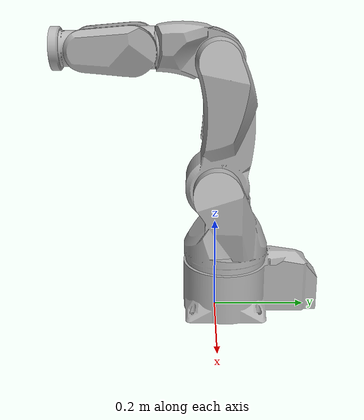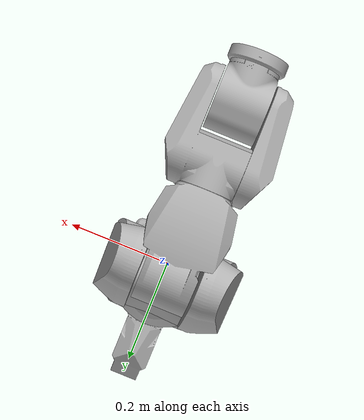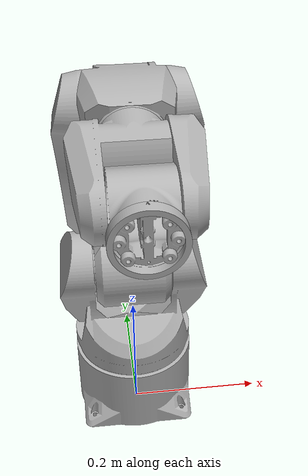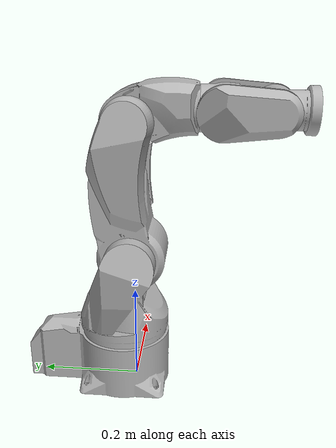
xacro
<?xml version="1.0" ?>
<robot name="Arctos" xmlns:xacro="http://www.ros.org/wiki/xacro">

<xacro:include filename="$(find Arctos_description)/urdf/materials.xacro" />
<xacro:include filename="$(find Arctos_description)/urdf/Arctos.trans" />
<xacro:include filename="$(find Arctos_description)/urdf/Arctos.gazebo" />
<link name="base_link">
  <inertial>
    <origin xyz="2.8269170606611176e-07 0.042242089973694066 0.05486158680185389" rpy="0 0 0"/>
    <mass value="27.88896095763374"/>
    <inertia ixx="0.142501" iyy="0.083035" izz="0.16612" ixy="-1e-06" iyz="-0.001774" ixz="0.0"/>
  </inertial>
  <visual>
    <origin xyz="0 0 0" rpy="0 0 0"/>
    <geometry>
      <mesh filename="package://Arctos_description/meshes/base_link.stl" scale="0.001 0.001 0.001"/>
    </geometry>
    <material name="silver"/>
  </visual>
  <collision>
    <origin xyz="0 0 0" rpy="0 0 0"/>
    <geometry>
      <mesh filename="package://Arctos_description/meshes/base_link.stl" scale="0.001 0.001 0.001"/>
    </geometry>
  </collision>
</link>

<link name="J1_1">
  <inertial>
    <origin xyz="-1.2969016003578023e-08 -0.0046595914386929164 0.06093214652494226" rpy="0 0 0"/>
    <mass value="15.113319762308254"/>
    <inertia ixx="0.07326" iyy="0.084237" izz="0.070775" ixy="-0.0" iyz="0.002944" ixz="-0.0"/>
  </inertial>
  <visual>
    <origin xyz="-0.0 -0.023029 -0.111" rpy="0 0 0"/>
    <geometry>
      <mesh filename="package://Arctos_description/meshes/J1_1.stl" scale="0.001 0.001 0.001"/>
    </geometry>
    <material name="silver"/>
  </visual>
  <collision>
    <origin xyz="-0.0 -0.023029 -0.111" rpy="0 0 0"/>
    <geometry>
      <mesh filename="package://Arctos_description/meshes/J1_1.stl" scale="0.001 0.001 0.001"/>
    </geometry>
  </collision>
</link>

<link name="J2_1">
  <inertial>
    <origin xyz="-0.0570500292196927 0.006692178790930273 0.06182090814203128" rpy="0 0 0"/>
    <mass value="17.860862530176735"/>
    <inertia ixx="0.172429" iyy="0.185732" izz="0.054099" ixy="0.0" iyz="-0.009489" ixz="0.0"/>
  </inertial>
  <visual>
    <origin xyz="-0.05713 -0.002855 -0.28806" rpy="0 0 0"/>
    <geometry>
      <mesh filename="package://Arctos_description/meshes/J2_1.stl" scale="0.001 0.001 0.001"/>
    </geometry>
    <material name="silver"/>
  </visual>
  <collision>
    <origin xyz="-0.05713 -0.002855 -0.28806" rpy="0 0 0"/>
    <geometry>
      <mesh filename="package://Arctos_description/meshes/J2_1.stl" scale="0.001 0.001 0.001"/>
    </geometry>
  </collision>
</link>

<link name="J3_1">
  <inertial>
    <origin xyz="-0.04203696709554858 -0.037767013468914694 0.009992291463018832" rpy="0 0 0"/>
    <mass value="8.761133641193867"/>
    <inertia ixx="0.028147" iyy="0.011365" izz="0.026007" ixy="-0.000571" iyz="0.003914" ixz="0.000103"/>
  </inertial>
  <visual>
    <origin xyz="-0.04313 -0.003782 -0.548929" rpy="0 0 0"/>
    <geometry>
      <mesh filename="package://Arctos_description/meshes/J3_1.stl" scale="0.001 0.001 0.001"/>
    </geometry>
    <material name="silver"/>
  </visual>
  <collision>
    <origin xyz="-0.04313 -0.003782 -0.548929" rpy="0 0 0"/>
    <geometry>
      <mesh filename="package://Arctos_description/meshes/J3_1.stl" scale="0.001 0.001 0.001"/>
    </geometry>
  </collision>
</link>

<link name="J4_1">
  <inertial>
    <origin xyz="-0.0001619446675095186 -0.04851842997750348 -0.000892639082643365" rpy="0 0 0"/>
    <mass value="4.632994870218515"/>
    <inertia ixx="0.017799" iyy="0.010651" izz="0.023098" ixy="0.0" iyz="-0.000142" ixz="-0.0"/>
  </inertial>
  <visual>
    <origin xyz="0.001709 0.121908 -0.570126" rpy="0 0 0"/>
    <geometry>
      <mesh filename="package://Arctos_description/meshes/J4_1.stl" scale="0.001 0.001 0.001"/>
    </geometry>
    <material name="silver"/>
  </visual>
  <collision>
    <origin xyz="0.001709 0.121908 -0.570126" rpy="0 0 0"/>
    <geometry>
      <mesh filename="package://Arctos_description/meshes/J4_1.stl" scale="0.001 0.001 0.001"/>
    </geometry>
  </collision>
</link>

<link name="J5_1">
  <inertial>
    <origin xyz="0.04018140689948157 -0.0168114160506172 7.445309645581766e-06" rpy="0 0 0"/>
    <mass value="0.9556926931376224"/>
    <inertia ixx="0.0016" iyy="0.000788" izz="0.00136" ixy="2e-06" iyz="-1e-06" ixz="0.0"/>
  </inertial>
  <visual>
    <origin xyz="0.04199 0.254971 -0.568148" rpy="0 0 0"/>
    <geometry>
      <mesh filename="package://Arctos_description/meshes/J5_1.stl" scale="0.001 0.001 0.001"/>
    </geometry>
    <material name="silver"/>
  </visual>
  <collision>
    <origin xyz="0.04199 0.254971 -0.568148" rpy="0 0 0"/>
    <geometry>
      <mesh filename="package://Arctos_description/meshes/J5_1.stl" scale="0.001 0.001 0.001"/>
    </geometry>
  </collision>
</link>

<link name="J6_1">
  <inertial>
    <origin xyz="0.0011602471936715398 -0.004888221693008177 2.1744784393318284e-05" rpy="0 0 0"/>
    <mass value="0.20362461815315086"/>
    <inertia ixx="0.000169" iyy="0.000326" izz="0.000169" ixy="-0.0" iyz="0.0" ixz="-0.0"/>
  </inertial>
  <visual>
    <origin xyz="0.00303 0.313516 -0.568106" rpy="0 0 0"/>
    <geometry>
      <mesh filename="package://Arctos_description/meshes/J6_1.stl" scale="0.001 0.001 0.001"/>
    </geometry>
    <material name="silver"/>
  </visual>
  <collision>
    <origin xyz="0.00303 0.313516 -0.568106" rpy="0 0 0"/>
    <geometry>
      <mesh filename="package://Arctos_description/meshes/J6_1.stl" scale="0.001 0.001 0.001"/>
    </geometry>
  </collision>
</link>

<joint name="Revolute 1" type="continuous">
  <origin xyz="0.0 0.023029 0.111" rpy="0 0 0"/>
  <parent link="base_link"/>
  <child link="J1_1"/>
  <axis xyz="-0.0 0.0 1.0"/>
</joint>

<joint name="Revolute 2" type="continuous">
  <origin xyz="0.05713 -0.020174 0.17706" rpy="0 0 0"/>
  <parent link="J1_1"/>
  <child link="J2_1"/>
  <axis xyz="1.0 -0.0 0.0"/>
</joint>

<joint name="Revolute 3" type="continuous">
  <origin xyz="-0.014 0.000927 0.260869" rpy="0 0 0"/>
  <parent link="J2_1"/>
  <child link="J3_1"/>
  <axis xyz="-1.0 -0.0 -0.0"/>
</joint>

<joint name="Revolute 4" type="continuous">
  <origin xyz="-0.044839 -0.12569 0.021197" rpy="0 0 0"/>
  <parent link="J3_1"/>
  <child link="J4_1"/>
  <axis xyz="-0.0 1.0 0.0"/>
</joint>

<joint name="Revolute 5" type="continuous">
  <origin xyz="-0.040281 -0.133063 -0.001978" rpy="0 0 0"/>
  <parent link="J4_1"/>
  <child link="J5_1"/>
  <axis xyz="1.0 0.0 0.0"/>
</joint>

<joint name="Revolute 6" type="continuous">
  <origin xyz="0.03896 -0.058545 -4.2e-05" rpy="0 0 0"/>
  <parent link="J5_1"/>
  <child link="J6_1"/>
  <axis xyz="0.0 -1.0 -0.0"/>
</joint>

</robot>

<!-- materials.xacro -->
<robot name="Arctos" xmlns:xacro="http://www.ros.org/wiki/xacro" >

<material name="silver">
  <color rgba="0.700 0.700 0.700 1.000"/>
</material>

</robot>

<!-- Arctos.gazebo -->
<robot name="Arctos" xmlns:xacro="http://www.ros.org/wiki/xacro" >

<xacro:property name="body_color" value="Gazebo/Silver" />

<gazebo>
  <plugin name="control" filename="libgazebo_ros_control.so"/>
</gazebo>
<gazebo reference="base_link">
  <material>${body_color}</material>
  <mu1>0.2</mu1>
  <mu2>0.2</mu2>
  <selfCollide>true</selfCollide>
  <gravity>true</gravity>
</gazebo>

<gazebo reference="J1_1">
  <material>${body_color}</material>
  <mu1>0.2</mu1>
  <mu2>0.2</mu2>
  <selfCollide>true</selfCollide>
</gazebo>

<gazebo reference="J2_1">
  <material>${body_color}</material>
  <mu1>0.2</mu1>
  <mu2>0.2</mu2>
  <selfCollide>true</selfCollide>
</gazebo>

<gazebo reference="J3_1">
  <material>${body_color}</material>
  <mu1>0.2</mu1>
  <mu2>0.2</mu2>
  <selfCollide>true</selfCollide>
</gazebo>

<gazebo reference="J4_1">
  <material>${body_color}</material>
  <mu1>0.2</mu1>
  <mu2>0.2</mu2>
  <selfCollide>true</selfCollide>
</gazebo>

<gazebo reference="J5_1">
  <material>${body_color}</material>
  <mu1>0.2</mu1>
  <mu2>0.2</mu2>
  <selfCollide>true</selfCollide>
</gazebo>

<gazebo reference="J6_1">
  <material>${body_color}</material>
  <mu1>0.2</mu1>
  <mu2>0.2</mu2>
  <selfCollide>true</selfCollide>
</gazebo>

</robot>
